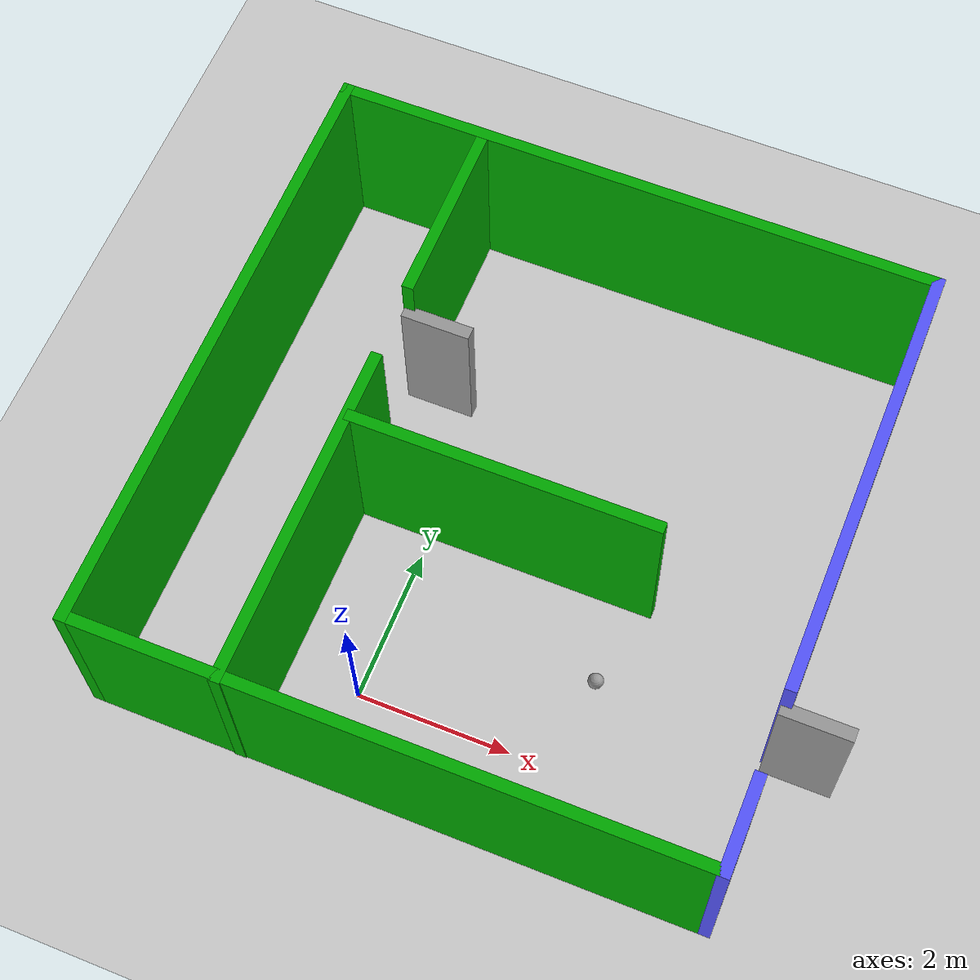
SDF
<sdf version="1.6">
 <world name="default">
  <plugin name="hello" filename="libproject1.so"/>
  <light name="sun" type="directional">
   <pose>0 0 10 0 -0 0</pose>
   <diffuse>0.8 0.8 0.8 1</diffuse>
   <specular>0.1 0.1 0.1 1</specular>
   <attenuation>
    <range>1000</range>
    <constant>0.9</constant>
    <linear>0.01</linear>
    <quadratic>0.001</quadratic>
   </attenuation>
   <direction>-0.5 0.5 -1</direction>
  </light>
  <model name="ground_plane">
   <static>1</static>
   <link name="link">
    <collision name="collision">
     <geometry><plane><normal>0 0 1</normal><size>100 100</size></plane></geometry>
     <surface><friction><ode><mu>100</mu><mu2>50</mu2></ode></friction></surface>
    </collision>
    <visual name="visual">
     <cast_shadows>0</cast_shadows>
     <geometry><plane><normal>0 0 1</normal><size>100 100</size></plane></geometry>
     <material>
      <script><uri>file://media/materials/scripts/gazebo.material</uri><name>Gazebo/Grey</name></script>
     </material>
    </visual>
   </link>
  </model>
  <gravity>0 0 -9.8</gravity>
  <magnetic_field>6e-06 2.3e-05 -4.2e-05</magnetic_field>
  <atmosphere type="adiabatic"/>
  <physics name="default_physics" default="0" type="ode">
   <max_step_size>0.001</max_step_size>
   <real_time_factor>1</real_time_factor>
   <real_time_update_rate>1000</real_time_update_rate>
  </physics>
  <scene><ambient>0.4 0.4 0.4 1</ambient><background>0.7 0.7 0.7 1</background><shadows>1</shadows></scene>
  <spherical_coordinates>
   <surface_model>EARTH_WGS84</surface_model>
   <latitude_deg>0</latitude_deg>
   <longitude_deg>0</longitude_deg>
   <elevation>0</elevation>
   <heading_deg>0</heading_deg>
  </spherical_coordinates>
  <model name="mybuilding">
   <pose>1.005 2.76825 0 0 -0 0</pose>
   <link name="Door_0">
    <collision name="Door_0_Collision">
     <geometry><box><size>0.9 0.17 2</size></box></geometry>
     <pose>0 0 1 0 -0 0</pose>
    </collision>
    <visual name="Door_0_Visual">
     <pose>0 0 1 0 -0 0</pose>
     <geometry><box><size>0.9 0.17 2</size></box></geometry>
     <material>
      <script><uri>file://media/materials/scripts/gazebo.material</uri><name>Gazebo/Grey</name></script>
     </material>
    </visual>
    <pose>-1.64471 1.42964 0 0 -0 0</pose>
   </link>
   <link name="Door_2">
    <collision name="Door_2_Collision">
     <geometry><box><size>0.9 0.17 2</size></box></geometry>
     <pose>0 0 1 0 -0 0</pose>
    </collision>
    <visual name="Door_2_Visual">
     <pose>0 0 1 0 -0 0</pose>
     <geometry><box><size>0.9 0.17 2</size></box></geometry>
     <material>
      <script><uri>file://media/materials/scripts/gazebo.material</uri><name>Gazebo/Grey</name></script>
     </material>
    </visual>
    <pose>4.32193 -1.77573 0 0 -0 0</pose>
   </link>
   <link name="Wall_0">
    <collision name="Wall_0_Collision">
     <geometry><box><size>8 0.15 2.5</size></box></geometry>
     <pose>0 0 1.25 0 -0 0</pose>
    </collision>
    <visual name="Wall_0_Visual">
     <pose>0 0 1.25 0 -0 0</pose>
     <geometry><box><size>8 0.15 2.5</size></box></geometry>
     <material>
      <script><uri>file://media/materials/scripts/gazebo.material</uri><name>Gazebo/Grey</name></script>
      <ambient>0 0.666667 0 1</ambient>
     </material>
    </visual>
    <pose>-3.925 0.006746 0 0 -0 1.5708</pose>
   </link>
   <link name="Wall_1">
    <collision name="Wall_1_Collision">
     <geometry><box><size>8 0.15 2.5</size></box></geometry>
     <pose>0 0 1.25 0 -0 0</pose>
    </collision>
    <visual name="Wall_1_Visual">
     <pose>0 0 1.25 0 -0 0</pose>
     <geometry><box><size>8 0.15 2.5</size></box></geometry>
     <material>
      <script><uri>file://media/materials/scripts/gazebo.material</uri><name>Gazebo/Grey</name></script>
      <ambient>0 0.666667 0 1</ambient>
     </material>
    </visual>
    <pose>0 3.93175 0 0 -0 0</pose>
   </link>
   <link name="Wall_13">
    <collision name="Wall_13_Collision">
     <geometry><box><size>1.25 0.15 2.5</size></box></geometry>
     <pose>0 0 1.25 0 -0 0</pose>
    </collision>
    <visual name="Wall_13_Visual">
     <pose>0 0 1.25 0 -0 0</pose>
     <geometry><box><size>1.25 0.15 2.5</size></box></geometry>
     <material>
      <script><uri>file://media/materials/scripts/gazebo.material</uri><name>Gazebo/Grey</name></script>
      <ambient>0.333333 0.333333 1 1</ambient>
     </material>
    </visual>
    <pose>3.925 -3.36825 0 0 -0 1.5708</pose>
   </link>
   <link name="Wall_15">
    <collision name="Wall_15_Collision">
     <geometry><box><size>4 0.15 2.5</size></box></geometry>
     <pose>0 0 1.25 0 -0 0</pose>
    </collision>
    <visual name="Wall_15_Visual">
     <pose>0 0 1.25 0 -0 0</pose>
     <geometry><box><size>4 0.15 2.5</size></box></geometry>
     <material>
      <script><uri>file://media/materials/scripts/gazebo.material</uri><name>Gazebo/Grey</name></script>
      <ambient>0 0.666667 0 1</ambient>
     </material>
    </visual>
    <pose>-0.02369 -0.400236 0 0 -0 0</pose>
   </link>
   <link name="Wall_2">
    <collision name="Wall_2_Collision">
     <geometry><box><size>5.75 0.15 2.5</size></box></geometry>
     <pose>0 0 1.25 0 -0 0</pose>
    </collision>
    <visual name="Wall_2_Visual">
     <pose>0 0 1.25 0 -0 0</pose>
     <geometry><box><size>5.75 0.15 2.5</size></box></geometry>
     <material>
      <script><uri>file://media/materials/scripts/gazebo.material</uri><name>Gazebo/Grey</name></script>
      <ambient>0.333333 0.333333 1 1</ambient>
     </material>
    </visual>
    <pose>3.925 1.13175 0 0 0 -1.5708</pose>
   </link>
   <link name="Wall_4">
    <collision name="Wall_4_Collision">
     <geometry><box><size>8 0.15 2.5</size></box></geometry>
     <pose>0 0 1.25 0 -0 0</pose>
    </collision>
    <visual name="Wall_4_Visual">
     <pose>0 0 1.25 0 -0 0</pose>
     <geometry><box><size>8 0.15 2.5</size></box></geometry>
     <material>
      <script><uri>file://media/materials/scripts/gazebo.material</uri><name>Gazebo/Grey</name></script>
      <ambient>0 0.666667 0 1</ambient>
     </material>
    </visual>
    <pose>0 -3.91825 0 0 -0 0</pose>
   </link>
   <link name="Wall_6">
    <collision name="Wall_6_Collision">
     <geometry><box><size>2.5 0.15 2.5</size></box></geometry>
     <pose>0 0 1.25 0 -0 0</pose>
    </collision>
    <visual name="Wall_6_Visual">
     <pose>0 0 1.25 0 -0 0</pose>
     <geometry><box><size>2.5 0.15 2.5</size></box></geometry>
     <material>
      <script><uri>file://media/materials/scripts/gazebo.material</uri><name>Gazebo/Grey</name></script>
      <ambient>0 0.666667 0 1</ambient>
     </material>
    </visual>
    <pose>-2.03367 2.71762 0 0 0 -1.5708</pose>
   </link>
   <link name="Wall_9">
    <collision name="Wall_9_Collision">
     <geometry><box><size>4.5 0.15 2.5</size></box></geometry>
     <pose>0 0 1.25 0 -0 0</pose>
    </collision>
    <visual name="Wall_9_Visual">
     <pose>0 0 1.25 0 -0 0</pose>
     <geometry><box><size>4.5 0.15 2.5</size></box></geometry>
     <material>
      <script><uri>file://media/materials/scripts/gazebo.material</uri><name>Gazebo/Grey</name></script>
      <ambient>0 0.666667 0 1</ambient>
     </material>
    </visual>
    <pose>-2.00881 -1.75675 0 0 0 -1.5708</pose>
   </link>
   <static>1</static>
  </model>
  <model name="my_ball">
   <link name="link">
    <pose>-0.570264 0 0 0 -0 0</pose>
    <inertial>
     <mass>7.51375</mass>
     <inertia><ixx>2.88245</ixx><ixy>0</ixy><ixz>0</ixz><iyy>2.88245</iyy><iyz>0</iyz><izz>2.88245</izz></inertia>
    </inertial>
    <visual name="visual">
     <geometry><sphere><radius>0.0999999</radius></sphere></geometry>
     <material>
      <script><name>Gazebo/Grey</name><uri>file://media/materials/scripts/gazebo.material</uri></script>
      <ambient>1 1 1 1</ambient>
      <diffuse>1 1 1 1</diffuse>
      <specular>1 1 1 1</specular>
      <emissive>1 1 1 1</emissive>
      <shader type="vertex"><normal_map>__default__</normal_map></shader>
     </material>
    </visual>
    <collision name="collision">
     <geometry><sphere><radius>0.1</radius></sphere></geometry>
     <surface>
      <friction>
       <ode><mu>1</mu><mu2>1</mu2><fdir1>0 0 0</fdir1><slip1>0</slip1><slip2>0</slip2></ode>
       <torsional>
        <coefficient>1</coefficient>
        <patch_radius>0</patch_radius>
        <surface_radius>0</surface_radius>
        <use_patch_radius>1</use_patch_radius>
        <ode><slip>0</slip></ode>
       </torsional>
      </friction>
      <bounce><restitution_coefficient>0</restitution_coefficient><threshold>1e+06</threshold></bounce>
      <contact>
       <collide_without_contact>0</collide_without_contact>
       <collide_without_contact_bitmask>1</collide_without_contact_bitmask>
       <collide_bitmask>1</collide_bitmask>
       <ode>
        <soft_cfm>0</soft_cfm>
        <soft_erp>0.2</soft_erp>
        <kp>1e+13</kp>
        <kd>1</kd>
        <max_vel>0.01</max_vel>
        <min_depth>0</min_depth>
       </ode>
       <bullet>
        <split_impulse>1</split_impulse>
        <split_impulse_penetration_threshold>-0.01</split_impulse_penetration_threshold>
        <soft_cfm>0</soft_cfm>
        <soft_erp>0.2</soft_erp>
        <kp>1e+13</kp>
        <kd>1</kd>
       </bullet>
      </contact>
     </surface>
    </collision>
   </link>
   <static>0</static>
   <pose>3.22229 1.22522 0.1 0 -0 0</pose>
  </model>
  <plugin filename="libcollision_map_creator.so" name="collision_map_creator"/>
 </world>
</sdf>
